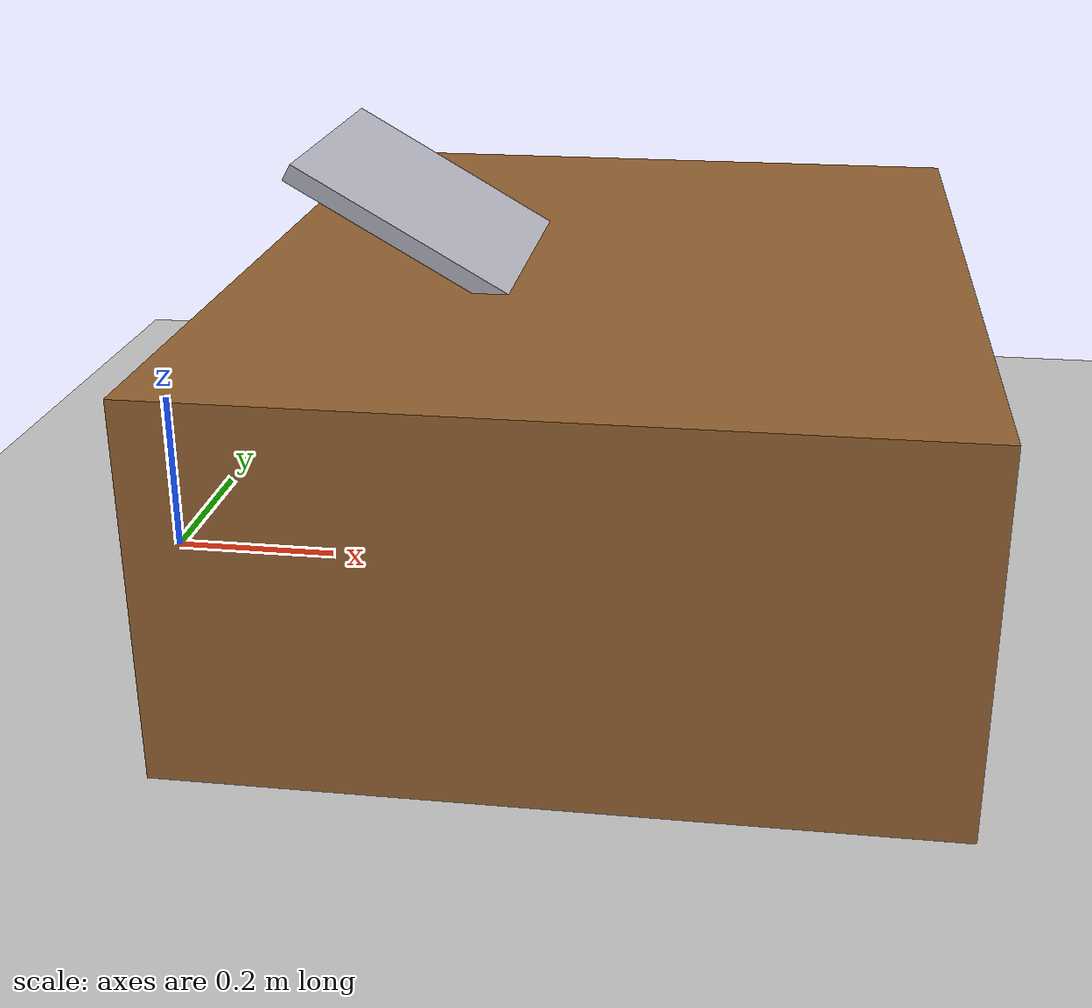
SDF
<?xml version="1.0" ?>
<sdf version="1.7">
  <world name="direct_force_world">
    <gravity>0 0 -9.81</gravity>

    <!-- GUI: Ignition Gazebo plugin-based configuration              -->
    <gui fullscreen="0">
      <!-- 3D viewport with initial camera pose -->
      <plugin filename="MinimalScene" name="3D View">
        <gz-gui>
          <title>3D View</title>
          <property key="showTitleBar" type="bool">false</property>
          <property key="state" type="string">docked</property>
        </gz-gui>
        <engine>ogre2</engine>
        <scene>scene</scene>
        <ambient_light>0.4 0.4 0.4</ambient_light>
        <background_color>0.8 0.8 0.8</background_color>
        <!-- Close-up front-right view: see table + arm + pad -->
        <camera_pose>1.0 0.6 0.75 0 0.35 -2.5</camera_pose>
      </plugin>

      <!-- Required scene management plugins -->
      <plugin filename="GzSceneManager" name="Scene Manager">
        <gz-gui>
          <property key="showTitleBar" type="bool">false</property>
        </gz-gui>
      </plugin>
      <plugin filename="InteractiveViewControl" name="Interactive view control">
        <gz-gui>
          <property key="showTitleBar" type="bool">false</property>
        </gz-gui>
      </plugin>
      <plugin filename="CameraTracking" name="Camera Tracking">
        <gz-gui>
          <property key="showTitleBar" type="bool">false</property>
        </gz-gui>
      </plugin>

      <!-- MarkerManager: loaded via gz_gui.config (single authoritative source) -->

      <!-- Play/pause/step controls -->
      <plugin filename="WorldControl" name="World control">
        <gz-gui>
          <title>World control</title>
          <property key="showTitleBar" type="bool">false</property>
          <property key="resizable" type="bool">false</property>
          <property key="width" type="double">72</property>
          <property key="height" type="double">121</property>
          <property key="z" type="double">1</property>
          <property key="state" type="string">floating</property>
          <anchors target="3D View">
            <line own="left" target="left"/>
            <line own="bottom" target="bottom"/>
          </anchors>
        </gz-gui>
        <play_pause>true</play_pause>
        <step>true</step>
      </plugin>

      <!-- Sim time / real-time factor display -->
      <plugin filename="WorldStats" name="World stats">
        <gz-gui>
          <title>World stats</title>
          <property key="showTitleBar" type="bool">false</property>
          <property key="resizable" type="bool">false</property>
          <property key="width" type="double">110</property>
          <property key="height" type="double">54</property>
          <property key="z" type="double">1</property>
          <property key="state" type="string">floating</property>
          <anchors target="3D View">
            <line own="right" target="right"/>
            <line own="bottom" target="bottom"/>
          </anchors>
        </gz-gui>
        <sim_time>true</sim_time>
        <real_time>true</real_time>
        <real_time_factor>true</real_time_factor>
      </plugin>

      <!-- Entity tree (left sidebar) -->
      <plugin filename="EntityTree" name="Entity tree">
        <gz-gui>
          <property key="state" type="string">docked_collapsed</property>
        </gz-gui>
      </plugin>
    </gui>

    <light type="directional" name="sun">
      <cast_shadows>true</cast_shadows>
      <pose>0 0 10 0 0 0</pose>
      <diffuse>0.8 0.8 0.8 1</diffuse>
      <specular>0.2 0.2 0.2 1</specular>
      <attenuation>
        <range>1000</range>
        <constant>0.9</constant>
        <linear>0.01</linear>
        <quadratic>0.001</quadratic>
      </attenuation>
      <direction>-0.5 0.1 -0.9</direction>
    </light>

    <!-- Simple ground plane -->
    <model name="ground_plane">
      <static>true</static>
      <link name="link">
        <collision name="collision">
          <geometry>
            <plane>
              <normal>0 0 1</normal>
              <size>20 20</size>
            </plane>
          </geometry>
          <surface>
            <friction>
              <ode>
                <mu>1.0</mu>
                <mu2>1.0</mu2>
              </ode>
            </friction>
          </surface>
        </collision>
          <visual name="visual">
            <geometry>
              <plane>
                <normal>0 0 1</normal>
                <size>100 100</size> </plane>
            </geometry>
            <material>
              <ambient>0.8 0.8 0.8 1</ambient>
              <diffuse>0.8 0.8 0.8 1</diffuse>
              <specular>0.8 0.8 0.8 1</specular>
            </material>
          </visual>
      </link>
    </model>

    <!-- A static table base (top surface at z = 0.40 m) -->
    <model name="table">
      <static>true</static>
      <pose>0.55 0 0.20 0 0 0</pose>
      <link name="link">
        <collision name="collision">
          <geometry>
            <box>
              <size>0.8 1.0 0.40</size>
            </box>
          </geometry>
          <surface>
            <contact>
              <ode>
                <kp>1e6</kp>
                <kd>100.0</kd>
              </ode>
            </contact>
            <friction>
              <ode>
                <mu>1.0</mu>
                <mu2>1.0</mu2>
              </ode>
            </friction>
          </surface>
        </collision>
        <visual name="visual">
          <geometry>
            <box>
              <size>0.8 1.0 0.40</size>
            </box>
          </geometry>
          <material>
            <ambient>0.5 0.35 0.2 1</ambient>
            <diffuse>0.6 0.4 0.2 1</diffuse>
            <specular>0.2 0.2 0.2 1</specular>
          </material>
        </visual>
      </link>
    </model>

    <!-- Inclined Surface (斜面)                                       -->
    <!-- Ramp tilted 30° about Y-axis, sitting on the table            -->
    <!-- Surface normal: (-sin30°, 0, cos30°) = (-0.5, 0, 0.866)      -->
    <!-- Geometry: 0.30 x 0.30 x 0.02 m slab, rotated 30° (0.5236r)  -->
    <!-- Center at (0.35, 0, 0.45), after rotation the ramp spans     -->
    <!-- roughly Z=0.375 to Z=0.525 over the table top                -->
    <model name="inclined_surface">
      <static>true</static>
      <pose>0.35 0 0.45  0 0.5236 0</pose>
      <link name="ramp_link">
        <collision name="ramp_collision">
          <geometry>
            <box>
              <size>0.30 0.30 0.02</size>
            </box>
          </geometry>
          <surface>
            <contact>
              <ode>
                <kp>20000.0</kp>
                <kd>100.0</kd>
                <max_vel>0.1</max_vel>
                <min_depth>0.001</min_depth>
              </ode>
            </contact>
            <friction>
              <ode>
                <mu>1.0</mu>
                <mu2>1.0</mu2>
              </ode>
            </friction>
          </surface>
        </collision>
        <visual name="ramp_visual">
          <geometry>
            <box>
              <size>0.30 0.30 0.02</size>
            </box>
          </geometry>
          <material>
            <ambient>0.6 0.6 0.65 1</ambient>
            <diffuse>0.7 0.7 0.75 1</diffuse>
            <specular>0.2 0.2 0.2 1</specular>
          </material>
        </visual>
      </link>
    </model>
  </world>
</sdf>
